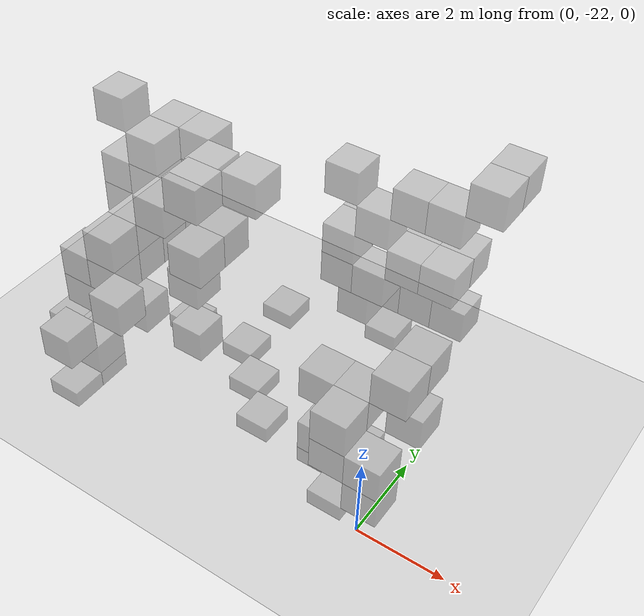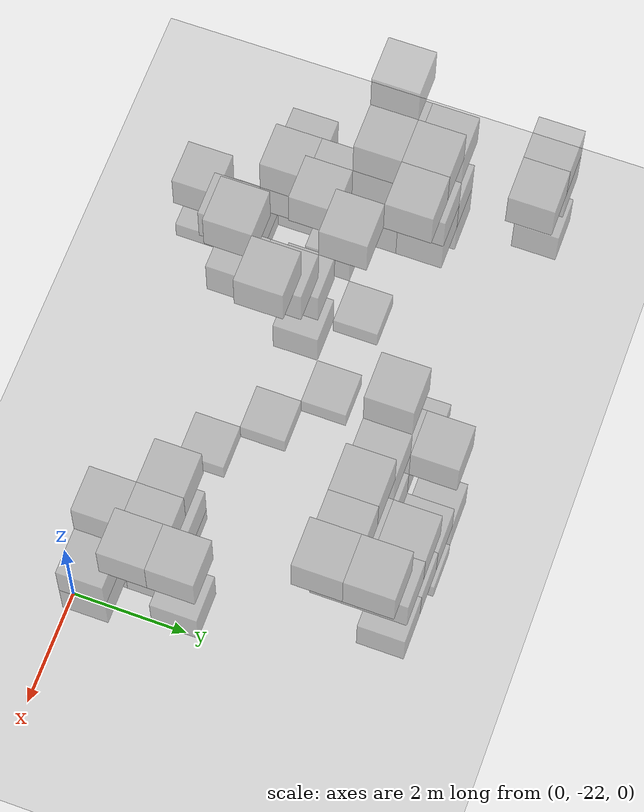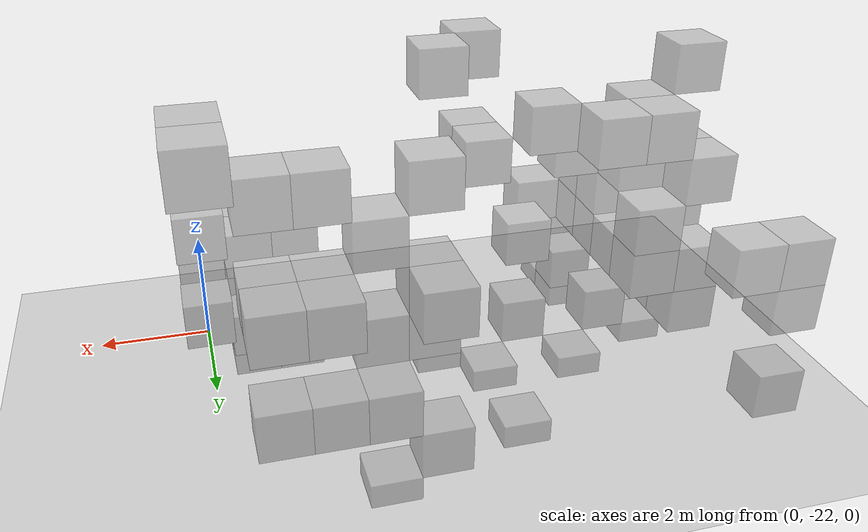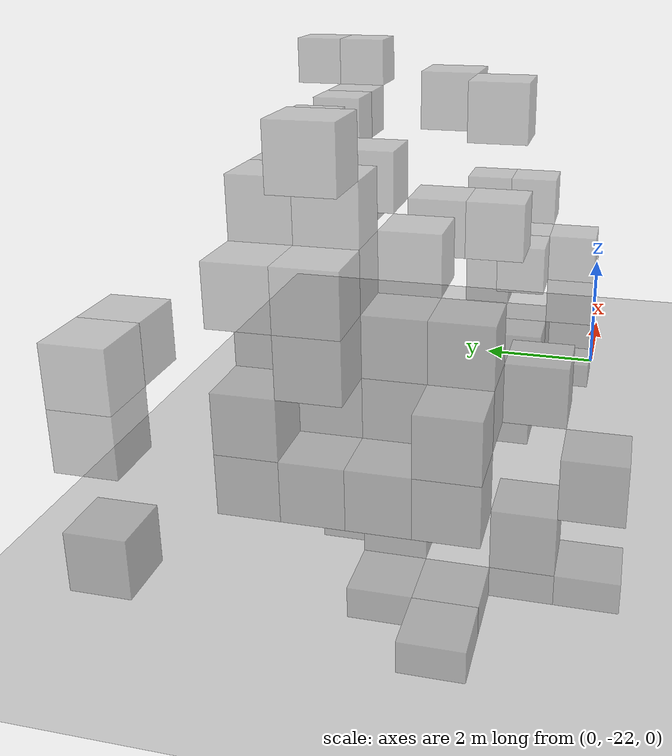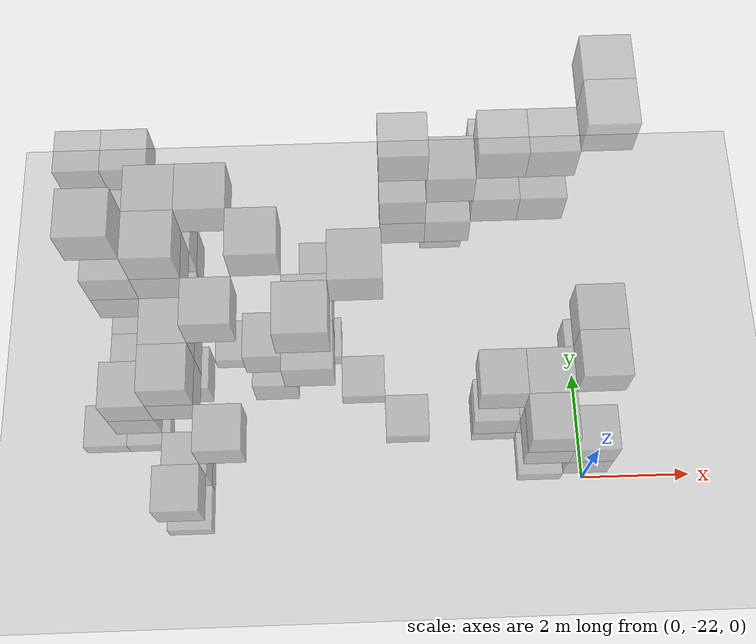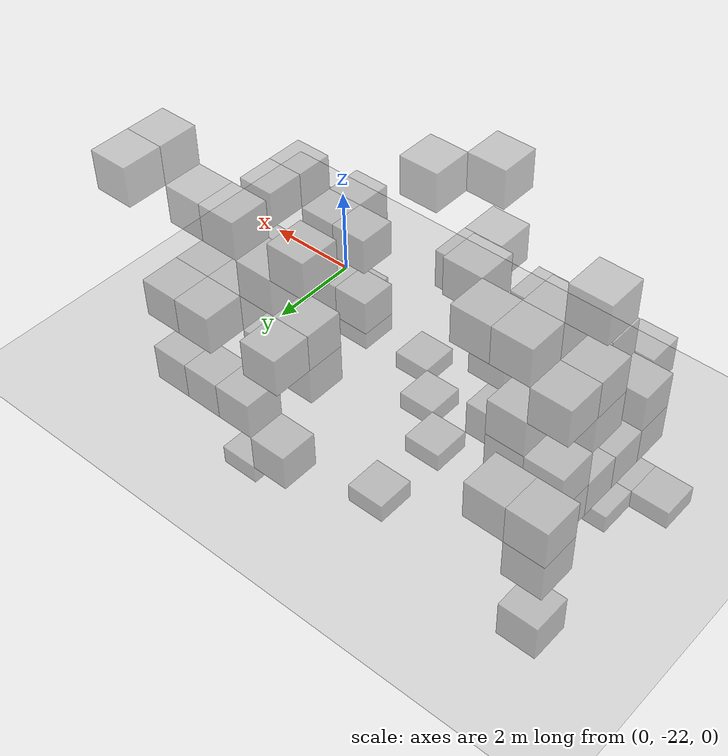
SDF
<sdf version="1.6">
 <world name="cramped_environment">
  <include><uri>model://sun</uri></include>
  <include><uri>model://ground_plane</uri></include>
  <model name="obs_13">
   <static>true</static>
   <pose>-8.00 -20.80 0.00 0 0 0</pose>
   <link name="link">
    <collision name="collision"><geometry><box><size>0.80 0.80 0.80</size></box></geometry></collision>
    <visual name="visual">
     <transparency>0.5</transparency>
     <geometry><box><size>0.80 0.80 0.80</size></box></geometry>
     <material>
      <script><name>Gazebo/Grey</name><uri>file://media/materials/scripts/gazebo.material</uri></script>
     </material>
    </visual>
   </link>
  </model>
  <model name="obs_20">
   <static>true</static>
   <pose>-7.20 -20.80 3.20 0 0 0</pose>
   <link name="link">
    <collision name="collision"><geometry><box><size>0.80 0.80 0.80</size></box></geometry></collision>
    <visual name="visual">
     <transparency>0.5</transparency>
     <geometry><box><size>0.80 0.80 0.80</size></box></geometry>
     <material>
      <script><name>Gazebo/Grey</name><uri>file://media/materials/scripts/gazebo.material</uri></script>
     </material>
    </visual>
   </link>
  </model>
  <model name="obs_22">
   <static>true</static>
   <pose>-8.00 -20.00 0.00 0 0 0</pose>
   <link name="link">
    <collision name="collision"><geometry><box><size>0.80 0.80 0.80</size></box></geometry></collision>
    <visual name="visual">
     <transparency>0.5</transparency>
     <geometry><box><size>0.80 0.80 0.80</size></box></geometry>
     <material>
      <script><name>Gazebo/Grey</name><uri>file://media/materials/scripts/gazebo.material</uri></script>
     </material>
    </visual>
   </link>
  </model>
  <model name="obs_26">
   <static>true</static>
   <pose>0.00 -21.60 1.60 0 0 0</pose>
   <link name="link">
    <collision name="collision"><geometry><box><size>0.80 0.80 0.80</size></box></geometry></collision>
    <visual name="visual">
     <transparency>0.5</transparency>
     <geometry><box><size>0.80 0.80 0.80</size></box></geometry>
     <material>
      <script><name>Gazebo/Grey</name><uri>file://media/materials/scripts/gazebo.material</uri></script>
     </material>
    </visual>
   </link>
  </model>
  <model name="obs_34">
   <static>true</static>
   <pose>-4.80 -20.80 4.00 0 0 0</pose>
   <link name="link">
    <collision name="collision"><geometry><box><size>0.80 0.80 0.80</size></box></geometry></collision>
    <visual name="visual">
     <transparency>0.5</transparency>
     <geometry><box><size>0.80 0.80 0.80</size></box></geometry>
     <material>
      <script><name>Gazebo/Grey</name><uri>file://media/materials/scripts/gazebo.material</uri></script>
     </material>
    </visual>
   </link>
  </model>
  <model name="obs_37">
   <static>true</static>
   <pose>-5.60 -20.00 0.80 0 0 0</pose>
   <link name="link">
    <collision name="collision"><geometry><box><size>0.80 0.80 0.80</size></box></geometry></collision>
    <visual name="visual">
     <transparency>0.5</transparency>
     <geometry><box><size>0.80 0.80 0.80</size></box></geometry>
     <material>
      <script><name>Gazebo/Grey</name><uri>file://media/materials/scripts/gazebo.material</uri></script>
     </material>
    </visual>
   </link>
  </model>
  <model name="obs_39">
   <static>true</static>
   <pose>-3.20 -17.60 3.20 0 0 0</pose>
   <link name="link">
    <collision name="collision"><geometry><box><size>0.80 0.80 0.80</size></box></geometry></collision>
    <visual name="visual">
     <transparency>0.5</transparency>
     <geometry><box><size>0.80 0.80 0.80</size></box></geometry>
     <material>
      <script><name>Gazebo/Grey</name><uri>file://media/materials/scripts/gazebo.material</uri></script>
     </material>
    </visual>
   </link>
  </model>
  <model name="obs_47">
   <static>true</static>
   <pose>-1.60 -16.80 1.60 0 0 0</pose>
   <link name="link">
    <collision name="collision"><geometry><box><size>0.80 0.80 0.80</size></box></geometry></collision>
    <visual name="visual">
     <transparency>0.5</transparency>
     <geometry><box><size>0.80 0.80 0.80</size></box></geometry>
     <material>
      <script><name>Gazebo/Grey</name><uri>file://media/materials/scripts/gazebo.material</uri></script>
     </material>
    </visual>
   </link>
  </model>
  <model name="obs_48">
   <static>true</static>
   <pose>-0.80 -16.80 1.60 0 0 0</pose>
   <link name="link">
    <collision name="collision"><geometry><box><size>0.80 0.80 0.80</size></box></geometry></collision>
    <visual name="visual">
     <transparency>0.5</transparency>
     <geometry><box><size>0.80 0.80 0.80</size></box></geometry>
     <material>
      <script><name>Gazebo/Grey</name><uri>file://media/materials/scripts/gazebo.material</uri></script>
     </material>
    </visual>
   </link>
  </model>
  <model name="obs_57">
   <static>true</static>
   <pose>-7.20 -19.20 2.40 0 0 0</pose>
   <link name="link">
    <collision name="collision"><geometry><box><size>0.80 0.80 0.80</size></box></geometry></collision>
    <visual name="visual">
     <transparency>0.5</transparency>
     <geometry><box><size>0.80 0.80 0.80</size></box></geometry>
     <material>
      <script><name>Gazebo/Grey</name><uri>file://media/materials/scripts/gazebo.material</uri></script>
     </material>
    </visual>
   </link>
  </model>
  <model name="obs_60">
   <static>true</static>
   <pose>0.00 -20.00 1.60 0 0 0</pose>
   <link name="link">
    <collision name="collision"><geometry><box><size>0.80 0.80 0.80</size></box></geometry></collision>
    <visual name="visual">
     <transparency>0.5</transparency>
     <geometry><box><size>0.80 0.80 0.80</size></box></geometry>
     <material>
      <script><name>Gazebo/Grey</name><uri>file://media/materials/scripts/gazebo.material</uri></script>
     </material>
    </visual>
   </link>
  </model>
  <model name="obs_65">
   <static>true</static>
   <pose>0.00 -17.60 5.60 0 0 0</pose>
   <link name="link">
    <collision name="collision"><geometry><box><size>0.80 0.80 0.80</size></box></geometry></collision>
    <visual name="visual">
     <transparency>0.5</transparency>
     <geometry><box><size>0.80 0.80 0.80</size></box></geometry>
     <material>
      <script><name>Gazebo/Grey</name><uri>file://media/materials/scripts/gazebo.material</uri></script>
     </material>
    </visual>
   </link>
  </model>
  <model name="obs_66">
   <static>true</static>
   <pose>-7.20 -18.40 3.20 0 0 0</pose>
   <link name="link">
    <collision name="collision"><geometry><box><size>0.80 0.80 0.80</size></box></geometry></collision>
    <visual name="visual">
     <transparency>0.5</transparency>
     <geometry><box><size>0.80 0.80 0.80</size></box></geometry>
     <material>
      <script><name>Gazebo/Grey</name><uri>file://media/materials/scripts/gazebo.material</uri></script>
     </material>
    </visual>
   </link>
  </model>
  <model name="obs_68">
   <static>true</static>
   <pose>-8.00 -20.80 2.40 0 0 0</pose>
   <link name="link">
    <collision name="collision"><geometry><box><size>0.80 0.80 0.80</size></box></geometry></collision>
    <visual name="visual">
     <transparency>0.5</transparency>
     <geometry><box><size>0.80 0.80 0.80</size></box></geometry>
     <material>
      <script><name>Gazebo/Grey</name><uri>file://media/materials/scripts/gazebo.material</uri></script>
     </material>
    </visual>
   </link>
  </model>
  <model name="obs_76">
   <static>true</static>
   <pose>-6.40 -18.40 4.80 0 0 0</pose>
   <link name="link">
    <collision name="collision"><geometry><box><size>0.80 0.80 0.80</size></box></geometry></collision>
    <visual name="visual">
     <transparency>0.5</transparency>
     <geometry><box><size>0.80 0.80 0.80</size></box></geometry>
     <material>
      <script><name>Gazebo/Grey</name><uri>file://media/materials/scripts/gazebo.material</uri></script>
     </material>
    </visual>
   </link>
  </model>
  <model name="obs_88">
   <static>true</static>
   <pose>-0.80 -17.60 3.20 0 0 0</pose>
   <link name="link">
    <collision name="collision"><geometry><box><size>0.80 0.80 0.80</size></box></geometry></collision>
    <visual name="visual">
     <transparency>0.5</transparency>
     <geometry><box><size>0.80 0.80 0.80</size></box></geometry>
     <material>
      <script><name>Gazebo/Grey</name><uri>file://media/materials/scripts/gazebo.material</uri></script>
     </material>
    </visual>
   </link>
  </model>
  <model name="obs_89">
   <static>true</static>
   <pose>-1.60 -17.60 3.20 0 0 0</pose>
   <link name="link">
    <collision name="collision"><geometry><box><size>0.80 0.80 0.80</size></box></geometry></collision>
    <visual name="visual">
     <transparency>0.5</transparency>
     <geometry><box><size>0.80 0.80 0.80</size></box></geometry>
     <material>
      <script><name>Gazebo/Grey</name><uri>file://media/materials/scripts/gazebo.material</uri></script>
     </material>
    </visual>
   </link>
  </model>
  <model name="obs_90">
   <static>true</static>
   <pose>-2.40 -16.80 0.00 0 0 0</pose>
   <link name="link">
    <collision name="collision"><geometry><box><size>0.80 0.80 0.80</size></box></geometry></collision>
    <visual name="visual">
     <transparency>0.5</transparency>
     <geometry><box><size>0.80 0.80 0.80</size></box></geometry>
     <material>
      <script><name>Gazebo/Grey</name><uri>file://media/materials/scripts/gazebo.material</uri></script>
     </material>
    </visual>
   </link>
  </model>
  <model name="obs_97">
   <static>true</static>
   <pose>-8.00 -19.20 1.60 0 0 0</pose>
   <link name="link">
    <collision name="collision"><geometry><box><size>0.80 0.80 0.80</size></box></geometry></collision>
    <visual name="visual">
     <transparency>0.5</transparency>
     <geometry><box><size>0.80 0.80 0.80</size></box></geometry>
     <material>
      <script><name>Gazebo/Grey</name><uri>file://media/materials/scripts/gazebo.material</uri></script>
     </material>
    </visual>
   </link>
  </model>
  <model name="obs_98">
   <static>true</static>
   <pose>-7.20 -22.40 0.00 0 0 0</pose>
   <link name="link">
    <collision name="collision"><geometry><box><size>0.80 0.80 0.80</size></box></geometry></collision>
    <visual name="visual">
     <transparency>0.5</transparency>
     <geometry><box><size>0.80 0.80 0.80</size></box></geometry>
     <material>
      <script><name>Gazebo/Grey</name><uri>file://media/materials/scripts/gazebo.material</uri></script>
     </material>
    </visual>
   </link>
  </model>
  <model name="obs_102">
   <static>true</static>
   <pose>0.00 -20.80 3.20 0 0 0</pose>
   <link name="link">
    <collision name="collision"><geometry><box><size>0.80 0.80 0.80</size></box></geometry></collision>
    <visual name="visual">
     <transparency>0.5</transparency>
     <geometry><box><size>0.80 0.80 0.80</size></box></geometry>
     <material>
      <script><name>Gazebo/Grey</name><uri>file://media/materials/scripts/gazebo.material</uri></script>
     </material>
    </visual>
   </link>
  </model>
  <model name="obs_103">
   <static>true</static>
   <pose>-8.00 -18.40 2.40 0 0 0</pose>
   <link name="link">
    <collision name="collision"><geometry><box><size>0.80 0.80 0.80</size></box></geometry></collision>
    <visual name="visual">
     <transparency>0.5</transparency>
     <geometry><box><size>0.80 0.80 0.80</size></box></geometry>
     <material>
      <script><name>Gazebo/Grey</name><uri>file://media/materials/scripts/gazebo.material</uri></script>
     </material>
    </visual>
   </link>
  </model>
  <model name="obs_105">
   <static>true</static>
   <pose>-7.20 -21.60 0.80 0 0 0</pose>
   <link name="link">
    <collision name="collision"><geometry><box><size>0.80 0.80 0.80</size></box></geometry></collision>
    <visual name="visual">
     <transparency>0.5</transparency>
     <geometry><box><size>0.80 0.80 0.80</size></box></geometry>
     <material>
      <script><name>Gazebo/Grey</name><uri>file://media/materials/scripts/gazebo.material</uri></script>
     </material>
    </visual>
   </link>
  </model>
  <model name="obs_106">
   <static>true</static>
   <pose>-7.20 -19.20 4.80 0 0 0</pose>
   <link name="link">
    <collision name="collision"><geometry><box><size>0.80 0.80 0.80</size></box></geometry></collision>
    <visual name="visual">
     <transparency>0.5</transparency>
     <geometry><box><size>0.80 0.80 0.80</size></box></geometry>
     <material>
      <script><name>Gazebo/Grey</name><uri>file://media/materials/scripts/gazebo.material</uri></script>
     </material>
    </visual>
   </link>
  </model>
  <model name="obs_117">
   <static>true</static>
   <pose>-6.40 -21.60 2.40 0 0 0</pose>
   <link name="link">
    <collision name="collision"><geometry><box><size>0.80 0.80 0.80</size></box></geometry></collision>
    <visual name="visual">
     <transparency>0.5</transparency>
     <geometry><box><size>0.80 0.80 0.80</size></box></geometry>
     <material>
      <script><name>Gazebo/Grey</name><uri>file://media/materials/scripts/gazebo.material</uri></script>
     </material>
    </visual>
   </link>
  </model>
  <model name="obs_125">
   <static>true</static>
   <pose>-8.80 -16.80 0.80 0 0 0</pose>
   <link name="link">
    <collision name="collision"><geometry><box><size>0.80 0.80 0.80</size></box></geometry></collision>
    <visual name="visual">
     <transparency>0.5</transparency>
     <geometry><box><size>0.80 0.80 0.80</size></box></geometry>
     <material>
      <script><name>Gazebo/Grey</name><uri>file://media/materials/scripts/gazebo.material</uri></script>
     </material>
    </visual>
   </link>
  </model>
  <model name="obs_133">
   <static>true</static>
   <pose>-0.80 -21.60 0.00 0 0 0</pose>
   <link name="link">
    <collision name="collision"><geometry><box><size>0.80 0.80 0.80</size></box></geometry></collision>
    <visual name="visual">
     <transparency>0.5</transparency>
     <geometry><box><size>0.80 0.80 0.80</size></box></geometry>
     <material>
      <script><name>Gazebo/Grey</name><uri>file://media/materials/scripts/gazebo.material</uri></script>
     </material>
    </visual>
   </link>
  </model>
  <model name="obs_136">
   <static>true</static>
   <pose>-2.40 -17.60 2.40 0 0 0</pose>
   <link name="link">
    <collision name="collision"><geometry><box><size>0.80 0.80 0.80</size></box></geometry></collision>
    <visual name="visual">
     <transparency>0.5</transparency>
     <geometry><box><size>0.80 0.80 0.80</size></box></geometry>
     <material>
      <script><name>Gazebo/Grey</name><uri>file://media/materials/scripts/gazebo.material</uri></script>
     </material>
    </visual>
   </link>
  </model>
  <model name="obs_137">
   <static>true</static>
   <pose>-7.20 -20.00 0.80 0 0 0</pose>
   <link name="link">
    <collision name="collision"><geometry><box><size>0.80 0.80 0.80</size></box></geometry></collision>
    <visual name="visual">
     <transparency>0.5</transparency>
     <geometry><box><size>0.80 0.80 0.80</size></box></geometry>
     <material>
      <script><name>Gazebo/Grey</name><uri>file://media/materials/scripts/gazebo.material</uri></script>
     </material>
    </visual>
   </link>
  </model>
  <model name="obs_138">
   <static>true</static>
   <pose>-0.80 -20.80 0.80 0 0 0</pose>
   <link name="link">
    <collision name="collision"><geometry><box><size>0.80 0.80 0.80</size></box></geometry></collision>
    <visual name="visual">
     <transparency>0.5</transparency>
     <geometry><box><size>0.80 0.80 0.80</size></box></geometry>
     <material>
      <script><name>Gazebo/Grey</name><uri>file://media/materials/scripts/gazebo.material</uri></script>
     </material>
    </visual>
   </link>
  </model>
  <model name="obs_139">
   <static>true</static>
   <pose>-1.60 -20.80 0.80 0 0 0</pose>
   <link name="link">
    <collision name="collision"><geometry><box><size>0.80 0.80 0.80</size></box></geometry></collision>
    <visual name="visual">
     <transparency>0.5</transparency>
     <geometry><box><size>0.80 0.80 0.80</size></box></geometry>
     <material>
      <script><name>Gazebo/Grey</name><uri>file://media/materials/scripts/gazebo.material</uri></script>
     </material>
    </visual>
   </link>
  </model>
  <model name="obs_153">
   <static>true</static>
   <pose>-8.00 -19.20 4.00 0 0 0</pose>
   <link name="link">
    <collision name="collision"><geometry><box><size>0.80 0.80 0.80</size></box></geometry></collision>
    <visual name="visual">
     <transparency>0.5</transparency>
     <geometry><box><size>0.80 0.80 0.80</size></box></geometry>
     <material>
      <script><name>Gazebo/Grey</name><uri>file://media/materials/scripts/gazebo.material</uri></script>
     </material>
    </visual>
   </link>
  </model>
  <model name="obs_155">
   <static>true</static>
   <pose>-3.20 -16.80 0.80 0 0 0</pose>
   <link name="link">
    <collision name="collision"><geometry><box><size>0.80 0.80 0.80</size></box></geometry></collision>
    <visual name="visual">
     <transparency>0.5</transparency>
     <geometry><box><size>0.80 0.80 0.80</size></box></geometry>
     <material>
      <script><name>Gazebo/Grey</name><uri>file://media/materials/scripts/gazebo.material</uri></script>
     </material>
    </visual>
   </link>
  </model>
  <model name="obs_169">
   <static>true</static>
   <pose>-5.60 -19.20 4.80 0 0 0</pose>
   <link name="link">
    <collision name="collision"><geometry><box><size>0.80 0.80 0.80</size></box></geometry></collision>
    <visual name="visual">
     <transparency>0.5</transparency>
     <geometry><box><size>0.80 0.80 0.80</size></box></geometry>
     <material>
      <script><name>Gazebo/Grey</name><uri>file://media/materials/scripts/gazebo.material</uri></script>
     </material>
    </visual>
   </link>
  </model>
  <model name="obs_180">
   <static>true</static>
   <pose>-8.80 -16.80 3.20 0 0 0</pose>
   <link name="link">
    <collision name="collision"><geometry><box><size>0.80 0.80 0.80</size></box></geometry></collision>
    <visual name="visual">
     <transparency>0.5</transparency>
     <geometry><box><size>0.80 0.80 0.80</size></box></geometry>
     <material>
      <script><name>Gazebo/Grey</name><uri>file://media/materials/scripts/gazebo.material</uri></script>
     </material>
    </visual>
   </link>
  </model>
  <model name="obs_190">
   <static>true</static>
   <pose>-7.20 -20.80 2.40 0 0 0</pose>
   <link name="link">
    <collision name="collision"><geometry><box><size>0.80 0.80 0.80</size></box></geometry></collision>
    <visual name="visual">
     <transparency>0.5</transparency>
     <geometry><box><size>0.80 0.80 0.80</size></box></geometry>
     <material>
      <script><name>Gazebo/Grey</name><uri>file://media/materials/scripts/gazebo.material</uri></script>
     </material>
    </visual>
   </link>
  </model>
  <model name="obs_191">
   <static>true</static>
   <pose>-0.80 -21.60 2.40 0 0 0</pose>
   <link name="link">
    <collision name="collision"><geometry><box><size>0.80 0.80 0.80</size></box></geometry></collision>
    <visual name="visual">
     <transparency>0.5</transparency>
     <geometry><box><size>0.80 0.80 0.80</size></box></geometry>
     <material>
      <script><name>Gazebo/Grey</name><uri>file://media/materials/scripts/gazebo.material</uri></script>
     </material>
    </visual>
   </link>
  </model>
  <model name="obs_195">
   <static>true</static>
   <pose>-7.20 -20.00 3.20 0 0 0</pose>
   <link name="link">
    <collision name="collision"><geometry><box><size>0.80 0.80 0.80</size></box></geometry></collision>
    <visual name="visual">
     <transparency>0.5</transparency>
     <geometry><box><size>0.80 0.80 0.80</size></box></geometry>
     <material>
      <script><name>Gazebo/Grey</name><uri>file://media/materials/scripts/gazebo.material</uri></script>
     </material>
    </visual>
   </link>
  </model>
  <model name="obs_198">
   <static>true</static>
   <pose>0.00 -21.60 0.80 0 0 0</pose>
   <link name="link">
    <collision name="collision"><geometry><box><size>0.80 0.80 0.80</size></box></geometry></collision>
    <visual name="visual">
     <transparency>0.5</transparency>
     <geometry><box><size>0.80 0.80 0.80</size></box></geometry>
     <material>
      <script><name>Gazebo/Grey</name><uri>file://media/materials/scripts/gazebo.material</uri></script>
     </material>
    </visual>
   </link>
  </model>
  <model name="obs_207">
   <static>true</static>
   <pose>-4.80 -20.00 4.00 0 0 0</pose>
   <link name="link">
    <collision name="collision"><geometry><box><size>0.80 0.80 0.80</size></box></geometry></collision>
    <visual name="visual">
     <transparency>0.5</transparency>
     <geometry><box><size>0.80 0.80 0.80</size></box></geometry>
     <material>
      <script><name>Gazebo/Grey</name><uri>file://media/materials/scripts/gazebo.material</uri></script>
     </material>
    </visual>
   </link>
  </model>
  <model name="obs_209">
   <static>true</static>
   <pose>-3.20 -17.60 2.40 0 0 0</pose>
   <link name="link">
    <collision name="collision"><geometry><box><size>0.80 0.80 0.80</size></box></geometry></collision>
    <visual name="visual">
     <transparency>0.5</transparency>
     <geometry><box><size>0.80 0.80 0.80</size></box></geometry>
     <material>
      <script><name>Gazebo/Grey</name><uri>file://media/materials/scripts/gazebo.material</uri></script>
     </material>
    </visual>
   </link>
  </model>
  <model name="obs_214">
   <static>true</static>
   <pose>-6.40 -20.00 4.00 0 0 0</pose>
   <link name="link">
    <collision name="collision"><geometry><box><size>0.80 0.80 0.80</size></box></geometry></collision>
    <visual name="visual">
     <transparency>0.5</transparency>
     <geometry><box><size>0.80 0.80 0.80</size></box></geometry>
     <material>
      <script><name>Gazebo/Grey</name><uri>file://media/materials/scripts/gazebo.material</uri></script>
     </material>
    </visual>
   </link>
  </model>
  <model name="obs_216">
   <static>true</static>
   <pose>-3.20 -16.80 3.20 0 0 0</pose>
   <link name="link">
    <collision name="collision"><geometry><box><size>0.80 0.80 0.80</size></box></geometry></collision>
    <visual name="visual">
     <transparency>0.5</transparency>
     <geometry><box><size>0.80 0.80 0.80</size></box></geometry>
     <material>
      <script><name>Gazebo/Grey</name><uri>file://media/materials/scripts/gazebo.material</uri></script>
     </material>
    </visual>
   </link>
  </model>
  <model name="obs_220">
   <static>true</static>
   <pose>-4.00 -20.00 5.60 0 0 0</pose>
   <link name="link">
    <collision name="collision"><geometry><box><size>0.80 0.80 0.80</size></box></geometry></collision>
    <visual name="visual">
     <transparency>0.5</transparency>
     <geometry><box><size>0.80 0.80 0.80</size></box></geometry>
     <material>
      <script><name>Gazebo/Grey</name><uri>file://media/materials/scripts/gazebo.material</uri></script>
     </material>
    </visual>
   </link>
  </model>
  <model name="obs_226">
   <static>true</static>
   <pose>-8.80 -20.80 0.00 0 0 0</pose>
   <link name="link">
    <collision name="collision"><geometry><box><size>0.80 0.80 0.80</size></box></geometry></collision>
    <visual name="visual">
     <transparency>0.5</transparency>
     <geometry><box><size>0.80 0.80 0.80</size></box></geometry>
     <material>
      <script><name>Gazebo/Grey</name><uri>file://media/materials/scripts/gazebo.material</uri></script>
     </material>
    </visual>
   </link>
  </model>
  <model name="obs_234">
   <static>true</static>
   <pose>-7.20 -18.40 2.40 0 0 0</pose>
   <link name="link">
    <collision name="collision"><geometry><box><size>0.80 0.80 0.80</size></box></geometry></collision>
    <visual name="visual">
     <transparency>0.5</transparency>
     <geometry><box><size>0.80 0.80 0.80</size></box></geometry>
     <material>
      <script><name>Gazebo/Grey</name><uri>file://media/materials/scripts/gazebo.material</uri></script>
     </material>
    </visual>
   </link>
  </model>
  <model name="obs_236">
   <static>true</static>
   <pose>0.00 -16.80 5.60 0 0 0</pose>
   <link name="link">
    <collision name="collision"><geometry><box><size>0.80 0.80 0.80</size></box></geometry></collision>
    <visual name="visual">
     <transparency>0.5</transparency>
     <geometry><box><size>0.80 0.80 0.80</size></box></geometry>
     <material>
      <script><name>Gazebo/Grey</name><uri>file://media/materials/scripts/gazebo.material</uri></script>
     </material>
    </visual>
   </link>
  </model>
  <model name="obs_239">
   <static>true</static>
   <pose>-8.00 -20.80 1.60 0 0 0</pose>
   <link name="link">
    <collision name="collision"><geometry><box><size>0.80 0.80 0.80</size></box></geometry></collision>
    <visual name="visual">
     <transparency>0.5</transparency>
     <geometry><box><size>0.80 0.80 0.80</size></box></geometry>
     <material>
      <script><name>Gazebo/Grey</name><uri>file://media/materials/scripts/gazebo.material</uri></script>
     </material>
    </visual>
   </link>
  </model>
  <model name="obs_245">
   <static>true</static>
   <pose>-4.80 -17.60 0.00 0 0 0</pose>
   <link name="link">
    <collision name="collision"><geometry><box><size>0.80 0.80 0.80</size></box></geometry></collision>
    <visual name="visual">
     <transparency>0.5</transparency>
     <geometry><box><size>0.80 0.80 0.80</size></box></geometry>
     <material>
      <script><name>Gazebo/Grey</name><uri>file://media/materials/scripts/gazebo.material</uri></script>
     </material>
    </visual>
   </link>
  </model>
  <model name="obs_248">
   <static>true</static>
   <pose>-8.00 -20.00 1.60 0 0 0</pose>
   <link name="link">
    <collision name="collision"><geometry><box><size>0.80 0.80 0.80</size></box></geometry></collision>
    <visual name="visual">
     <transparency>0.5</transparency>
     <geometry><box><size>0.80 0.80 0.80</size></box></geometry>
     <material>
      <script><name>Gazebo/Grey</name><uri>file://media/materials/scripts/gazebo.material</uri></script>
     </material>
    </visual>
   </link>
  </model>
  <model name="obs_260">
   <static>true</static>
   <pose>-3.20 -20.80 0.00 0 0 0</pose>
   <link name="link">
    <collision name="collision"><geometry><box><size>0.80 0.80 0.80</size></box></geometry></collision>
    <visual name="visual">
     <transparency>0.5</transparency>
     <geometry><box><size>0.80 0.80 0.80</size></box></geometry>
     <material>
      <script><name>Gazebo/Grey</name><uri>file://media/materials/scripts/gazebo.material</uri></script>
     </material>
    </visual>
   </link>
  </model>
  <model name="obs_262">
   <static>true</static>
   <pose>-4.80 -20.80 5.60 0 0 0</pose>
   <link name="link">
    <collision name="collision"><geometry><box><size>0.80 0.80 0.80</size></box></geometry></collision>
    <visual name="visual">
     <transparency>0.5</transparency>
     <geometry><box><size>0.80 0.80 0.80</size></box></geometry>
     <material>
      <script><name>Gazebo/Grey</name><uri>file://media/materials/scripts/gazebo.material</uri></script>
     </material>
    </visual>
   </link>
  </model>
  <model name="obs_265">
   <static>true</static>
   <pose>-5.60 -20.00 2.40 0 0 0</pose>
   <link name="link">
    <collision name="collision"><geometry><box><size>0.80 0.80 0.80</size></box></geometry></collision>
    <visual name="visual">
     <transparency>0.5</transparency>
     <geometry><box><size>0.80 0.80 0.80</size></box></geometry>
     <material>
      <script><name>Gazebo/Grey</name><uri>file://media/materials/scripts/gazebo.material</uri></script>
     </material>
    </visual>
   </link>
  </model>
  <model name="obs_268">
   <static>true</static>
   <pose>-3.20 -17.60 4.80 0 0 0</pose>
   <link name="link">
    <collision name="collision"><geometry><box><size>0.80 0.80 0.80</size></box></geometry></collision>
    <visual name="visual">
     <transparency>0.5</transparency>
     <geometry><box><size>0.80 0.80 0.80</size></box></geometry>
     <material>
      <script><name>Gazebo/Grey</name><uri>file://media/materials/scripts/gazebo.material</uri></script>
     </material>
    </visual>
   </link>
  </model>
  <model name="obs_274">
   <static>true</static>
   <pose>-0.80 -16.80 3.20 0 0 0</pose>
   <link name="link">
    <collision name="collision"><geometry><box><size>0.80 0.80 0.80</size></box></geometry></collision>
    <visual name="visual">
     <transparency>0.5</transparency>
     <geometry><box><size>0.80 0.80 0.80</size></box></geometry>
     <material>
      <script><name>Gazebo/Grey</name><uri>file://media/materials/scripts/gazebo.material</uri></script>
     </material>
    </visual>
   </link>
  </model>
  <model name="obs_275">
   <static>true</static>
   <pose>-1.60 -16.80 3.20 0 0 0</pose>
   <link name="link">
    <collision name="collision"><geometry><box><size>0.80 0.80 0.80</size></box></geometry></collision>
    <visual name="visual">
     <transparency>0.5</transparency>
     <geometry><box><size>0.80 0.80 0.80</size></box></geometry>
     <material>
      <script><name>Gazebo/Grey</name><uri>file://media/materials/scripts/gazebo.material</uri></script>
     </material>
    </visual>
   </link>
  </model>
  <model name="obs_286">
   <static>true</static>
   <pose>-8.00 -18.40 1.60 0 0 0</pose>
   <link name="link">
    <collision name="collision"><geometry><box><size>0.80 0.80 0.80</size></box></geometry></collision>
    <visual name="visual">
     <transparency>0.5</transparency>
     <geometry><box><size>0.80 0.80 0.80</size></box></geometry>
     <material>
      <script><name>Gazebo/Grey</name><uri>file://media/materials/scripts/gazebo.material</uri></script>
     </material>
    </visual>
   </link>
  </model>
  <model name="obs_287">
   <static>true</static>
   <pose>-7.20 -21.60 0.00 0 0 0</pose>
   <link name="link">
    <collision name="collision"><geometry><box><size>0.80 0.80 0.80</size></box></geometry></collision>
    <visual name="visual">
     <transparency>0.5</transparency>
     <geometry><box><size>0.80 0.80 0.80</size></box></geometry>
     <material>
      <script><name>Gazebo/Grey</name><uri>file://media/materials/scripts/gazebo.material</uri></script>
     </material>
    </visual>
   </link>
  </model>
  <model name="obs_288">
   <static>true</static>
   <pose>-7.20 -19.20 4.00 0 0 0</pose>
   <link name="link">
    <collision name="collision"><geometry><box><size>0.80 0.80 0.80</size></box></geometry></collision>
    <visual name="visual">
     <transparency>0.5</transparency>
     <geometry><box><size>0.80 0.80 0.80</size></box></geometry>
     <material>
      <script><name>Gazebo/Grey</name><uri>file://media/materials/scripts/gazebo.material</uri></script>
     </material>
    </visual>
   </link>
  </model>
  <model name="obs_291">
   <static>true</static>
   <pose>0.00 -20.00 3.20 0 0 0</pose>
   <link name="link">
    <collision name="collision"><geometry><box><size>0.80 0.80 0.80</size></box></geometry></collision>
    <visual name="visual">
     <transparency>0.5</transparency>
     <geometry><box><size>0.80 0.80 0.80</size></box></geometry>
     <material>
      <script><name>Gazebo/Grey</name><uri>file://media/materials/scripts/gazebo.material</uri></script>
     </material>
    </visual>
   </link>
  </model>
  <model name="obs_295">
   <static>true</static>
   <pose>-7.20 -18.40 4.80 0 0 0</pose>
   <link name="link">
    <collision name="collision"><geometry><box><size>0.80 0.80 0.80</size></box></geometry></collision>
    <visual name="visual">
     <transparency>0.5</transparency>
     <geometry><box><size>0.80 0.80 0.80</size></box></geometry>
     <material>
      <script><name>Gazebo/Grey</name><uri>file://media/materials/scripts/gazebo.material</uri></script>
     </material>
    </visual>
   </link>
  </model>
  <model name="obs_309">
   <static>true</static>
   <pose>-4.00 -20.00 0.00 0 0 0</pose>
   <link name="link">
    <collision name="collision"><geometry><box><size>0.80 0.80 0.80</size></box></geometry></collision>
    <visual name="visual">
     <transparency>0.5</transparency>
     <geometry><box><size>0.80 0.80 0.80</size></box></geometry>
     <material>
      <script><name>Gazebo/Grey</name><uri>file://media/materials/scripts/gazebo.material</uri></script>
     </material>
    </visual>
   </link>
  </model>
  <model name="obs_312">
   <static>true</static>
   <pose>-0.80 -20.80 0.00 0 0 0</pose>
   <link name="link">
    <collision name="collision"><geometry><box><size>0.80 0.80 0.80</size></box></geometry></collision>
    <visual name="visual">
     <transparency>0.5</transparency>
     <geometry><box><size>0.80 0.80 0.80</size></box></geometry>
     <material>
      <script><name>Gazebo/Grey</name><uri>file://media/materials/scripts/gazebo.material</uri></script>
     </material>
    </visual>
   </link>
  </model>
  <model name="obs_313">
   <static>true</static>
   <pose>-1.60 -20.80 0.00 0 0 0</pose>
   <link name="link">
    <collision name="collision"><geometry><box><size>0.80 0.80 0.80</size></box></geometry></collision>
    <visual name="visual">
     <transparency>0.5</transparency>
     <geometry><box><size>0.80 0.80 0.80</size></box></geometry>
     <material>
      <script><name>Gazebo/Grey</name><uri>file://media/materials/scripts/gazebo.material</uri></script>
     </material>
    </visual>
   </link>
  </model>
  <model name="obs_319">
   <static>true</static>
   <pose>-1.60 -17.60 4.80 0 0 0</pose>
   <link name="link">
    <collision name="collision"><geometry><box><size>0.80 0.80 0.80</size></box></geometry></collision>
    <visual name="visual">
     <transparency>0.5</transparency>
     <geometry><box><size>0.80 0.80 0.80</size></box></geometry>
     <material>
      <script><name>Gazebo/Grey</name><uri>file://media/materials/scripts/gazebo.material</uri></script>
     </material>
    </visual>
   </link>
  </model>
  <model name="obs_320">
   <static>true</static>
   <pose>-0.80 -17.60 4.80 0 0 0</pose>
   <link name="link">
    <collision name="collision"><geometry><box><size>0.80 0.80 0.80</size></box></geometry></collision>
    <visual name="visual">
     <transparency>0.5</transparency>
     <geometry><box><size>0.80 0.80 0.80</size></box></geometry>
     <material>
      <script><name>Gazebo/Grey</name><uri>file://media/materials/scripts/gazebo.material</uri></script>
     </material>
    </visual>
   </link>
  </model>
  <model name="obs_322">
   <static>true</static>
   <pose>-2.40 -16.80 1.60 0 0 0</pose>
   <link name="link">
    <collision name="collision"><geometry><box><size>0.80 0.80 0.80</size></box></geometry></collision>
    <visual name="visual">
     <transparency>0.5</transparency>
     <geometry><box><size>0.80 0.80 0.80</size></box></geometry>
     <material>
      <script><name>Gazebo/Grey</name><uri>file://media/materials/scripts/gazebo.material</uri></script>
     </material>
    </visual>
   </link>
  </model>
  <model name="obs_331">
   <static>true</static>
   <pose>-8.00 -19.20 3.20 0 0 0</pose>
   <link name="link">
    <collision name="collision"><geometry><box><size>0.80 0.80 0.80</size></box></geometry></collision>
    <visual name="visual">
     <transparency>0.5</transparency>
     <geometry><box><size>0.80 0.80 0.80</size></box></geometry>
     <material>
      <script><name>Gazebo/Grey</name><uri>file://media/materials/scripts/gazebo.material</uri></script>
     </material>
    </visual>
   </link>
  </model>
  <model name="obs_332">
   <static>true</static>
   <pose>-7.20 -22.40 1.60 0 0 0</pose>
   <link name="link">
    <collision name="collision"><geometry><box><size>0.80 0.80 0.80</size></box></geometry></collision>
    <visual name="visual">
     <transparency>0.5</transparency>
     <geometry><box><size>0.80 0.80 0.80</size></box></geometry>
     <material>
      <script><name>Gazebo/Grey</name><uri>file://media/materials/scripts/gazebo.material</uri></script>
     </material>
    </visual>
   </link>
  </model>
  <model name="obs_337">
   <static>true</static>
   <pose>-8.00 -18.40 4.00 0 0 0</pose>
   <link name="link">
    <collision name="collision"><geometry><box><size>0.80 0.80 0.80</size></box></geometry></collision>
    <visual name="visual">
     <transparency>0.5</transparency>
     <geometry><box><size>0.80 0.80 0.80</size></box></geometry>
     <material>
      <script><name>Gazebo/Grey</name><uri>file://media/materials/scripts/gazebo.material</uri></script>
     </material>
    </visual>
   </link>
  </model>
  <model name="obs_357">
   <static>true</static>
   <pose>-8.80 -16.80 2.40 0 0 0</pose>
   <link name="link">
    <collision name="collision"><geometry><box><size>0.80 0.80 0.80</size></box></geometry></collision>
    <visual name="visual">
     <transparency>0.5</transparency>
     <geometry><box><size>0.80 0.80 0.80</size></box></geometry>
     <material>
      <script><name>Gazebo/Grey</name><uri>file://media/materials/scripts/gazebo.material</uri></script>
     </material>
    </visual>
   </link>
  </model>
  <model name="obs_364">
   <static>true</static>
   <pose>-0.80 -21.60 1.60 0 0 0</pose>
   <link name="link">
    <collision name="collision"><geometry><box><size>0.80 0.80 0.80</size></box></geometry></collision>
    <visual name="visual">
     <transparency>0.5</transparency>
     <geometry><box><size>0.80 0.80 0.80</size></box></geometry>
     <material>
      <script><name>Gazebo/Grey</name><uri>file://media/materials/scripts/gazebo.material</uri></script>
     </material>
    </visual>
   </link>
  </model>
  <model name="obs_366">
   <static>true</static>
   <pose>-2.40 -17.60 4.00 0 0 0</pose>
   <link name="link">
    <collision name="collision"><geometry><box><size>0.80 0.80 0.80</size></box></geometry></collision>
    <visual name="visual">
     <transparency>0.5</transparency>
     <geometry><box><size>0.80 0.80 0.80</size></box></geometry>
     <material>
      <script><name>Gazebo/Grey</name><uri>file://media/materials/scripts/gazebo.material</uri></script>
     </material>
    </visual>
   </link>
  </model>
  <model name="obs_367">
   <static>true</static>
   <pose>-7.20 -20.00 2.40 0 0 0</pose>
   <link name="link">
    <collision name="collision"><geometry><box><size>0.80 0.80 0.80</size></box></geometry></collision>
    <visual name="visual">
     <transparency>0.5</transparency>
     <geometry><box><size>0.80 0.80 0.80</size></box></geometry>
     <material>
      <script><name>Gazebo/Grey</name><uri>file://media/materials/scripts/gazebo.material</uri></script>
     </material>
    </visual>
   </link>
  </model>
  <model name="obs_368">
   <static>true</static>
   <pose>-0.80 -20.80 2.40 0 0 0</pose>
   <link name="link">
    <collision name="collision"><geometry><box><size>0.80 0.80 0.80</size></box></geometry></collision>
    <visual name="visual">
     <transparency>0.5</transparency>
     <geometry><box><size>0.80 0.80 0.80</size></box></geometry>
     <material>
      <script><name>Gazebo/Grey</name><uri>file://media/materials/scripts/gazebo.material</uri></script>
     </material>
    </visual>
   </link>
  </model>
  <model name="obs_369">
   <static>true</static>
   <pose>-1.60 -20.80 2.40 0 0 0</pose>
   <link name="link">
    <collision name="collision"><geometry><box><size>0.80 0.80 0.80</size></box></geometry></collision>
    <visual name="visual">
     <transparency>0.5</transparency>
     <geometry><box><size>0.80 0.80 0.80</size></box></geometry>
     <material>
      <script><name>Gazebo/Grey</name><uri>file://media/materials/scripts/gazebo.material</uri></script>
     </material>
    </visual>
   </link>
  </model>
  <model name="obs_374">
   <static>true</static>
   <pose>-8.00 -16.80 3.20 0 0 0</pose>
   <link name="link">
    <collision name="collision"><geometry><box><size>0.80 0.80 0.80</size></box></geometry></collision>
    <visual name="visual">
     <transparency>0.5</transparency>
     <geometry><box><size>0.80 0.80 0.80</size></box></geometry>
     <material>
      <script><name>Gazebo/Grey</name><uri>file://media/materials/scripts/gazebo.material</uri></script>
     </material>
    </visual>
   </link>
  </model>
  <model name="obs_379">
   <static>true</static>
   <pose>-4.80 -19.20 0.00 0 0 0</pose>
   <link name="link">
    <collision name="collision"><geometry><box><size>0.80 0.80 0.80</size></box></geometry></collision>
    <visual name="visual">
     <transparency>0.5</transparency>
     <geometry><box><size>0.80 0.80 0.80</size></box></geometry>
     <material>
      <script><name>Gazebo/Grey</name><uri>file://media/materials/scripts/gazebo.material</uri></script>
     </material>
    </visual>
   </link>
  </model>
  <model name="obs_386">
   <static>true</static>
   <pose>-6.40 -19.20 0.00 0 0 0</pose>
   <link name="link">
    <collision name="collision"><geometry><box><size>0.80 0.80 0.80</size></box></geometry></collision>
    <visual name="visual">
     <transparency>0.5</transparency>
     <geometry><box><size>0.80 0.80 0.80</size></box></geometry>
     <material>
      <script><name>Gazebo/Grey</name><uri>file://media/materials/scripts/gazebo.material</uri></script>
     </material>
    </visual>
   </link>
  </model>
  <model name="obs_387">
   <static>true</static>
   <pose>-8.00 -19.20 5.60 0 0 0</pose>
   <link name="link">
    <collision name="collision"><geometry><box><size>0.80 0.80 0.80</size></box></geometry></collision>
    <visual name="visual">
     <transparency>0.5</transparency>
     <geometry><box><size>0.80 0.80 0.80</size></box></geometry>
     <material>
      <script><name>Gazebo/Grey</name><uri>file://media/materials/scripts/gazebo.material</uri></script>
     </material>
    </visual>
   </link>
  </model>
 </world>
</sdf>
